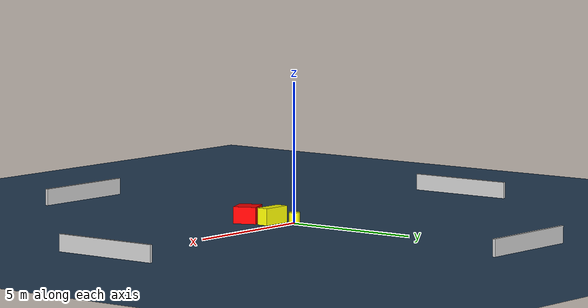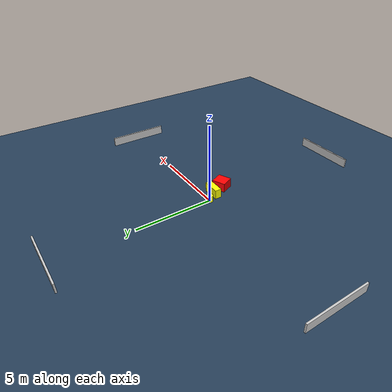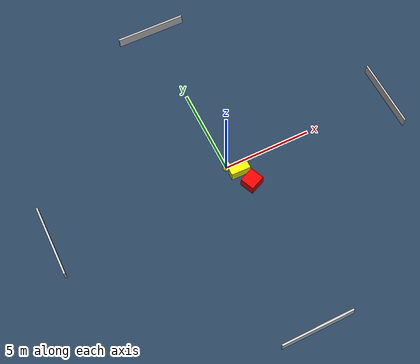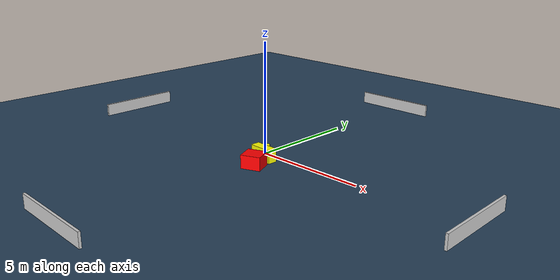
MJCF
<?xml version="1.0" ?>
<mujoco model="generated_environment">
  <option timestep="0.01" integrator="RK4" cone="elliptic"/>
  <default>
    <geom density="1"/>
  </default>
  <asset>
    <texture builtin="gradient" height="3072" name="skybox" rgb1="0.3 0.5 0.7" rgb2="0 0 0" type="skybox" width="512"/>
    <texture builtin="checker" height="300" name="groundplane" rgb1="0.2 0.3 0.4" rgb2="0.1 0.2 0.3" type="2d" width="300"/>
    <material name="groundplane" reflectance="0.2" texrepeat="5 5" texture="groundplane"/>
  </asset>
  <worldbody>
    <light dir="0 0 -1" directional="true" pos="0 0 1.5"/>
    <geom condim="3" friction="0.5 0.005 0.001" material="groundplane" name="floor" pos="0 0 0" size="0 0 0.05" type="plane"/>
    <body name="walls">
      <geom name="wall_1" condim="4" pos="-10.0 0.0 0.3" rgba="0.800000011920929 0.800000011920929 0.800000011920929 1.0" size="0.05 2.0 0.3" type="box"/>
      <geom name="wall_2" condim="4" pos="10.0 0.0 0.3" rgba="0.800000011920929 0.800000011920929 0.800000011920929 1.0" size="0.05 2.0 0.3" type="box"/>
      <geom name="wall_3" condim="4" pos="0.0 -10.0 0.3" rgba="0.800000011920929 0.800000011920929 0.800000011920929 1.0" size="2.0 0.05 0.3" type="box"/>
      <geom name="wall_4" condim="4" pos="0.0 10.0 0.3" rgba="0.800000011920929 0.800000011920929 0.800000011920929 1.0" size="2.0 0.05 0.3" type="box"/>
    </body>
    <body name="robot">
      <joint name="joint_x" type="slide" pos="0 0 0" axis="1 0 0"/>
      <joint name="joint_y" type="slide" pos="0 0 0" axis="0 1 0"/>
      <geom name="robot" type="cylinder" pos="0.0 0.0 0.2" size="0.2 0.2 0.0" mass="5.0" friction="1.0 0.005 0.0001" condim="4" rgba="1.0 1.0 0.0 1.0"/>
    </body>
    <body name="obstacle_1_movable">
      <geom name="obstacle_1_movable" condim="4" pos="0.49876111918613397 -0.5961615974292257 0.3" euler="0 0 358.7230614073131" friction="0.0 0.005 0.001" rgba="1.0 1.0 0.0 1.0" size="0.5516546799003461 0.2117498572158732 0.3" type="box" mass="0.1"/>
      <joint type="free"/>
    </body>
    <body name="obstacle_2_static">
      <geom name="obstacle_2_static" condim="4" pos="0.8044206948395097 -1.4570507914723383 0.3" euler="0 0 113.23570882066446" friction="0.0 0.005 0.001" rgba="1.0 0.0 0.0 1.0" size="0.40669294306877213 0.43640909685075574 0.3" type="box"/>
    </body>
  </worldbody>
  <actuator>
    <motor name="actuator_x" joint="joint_x" gear="1" ctrlrange="-1 1"/>
    <motor name="actuator_y" joint="joint_y" gear="1" ctrlrange="-1 1"/>
  </actuator>
</mujoco>
